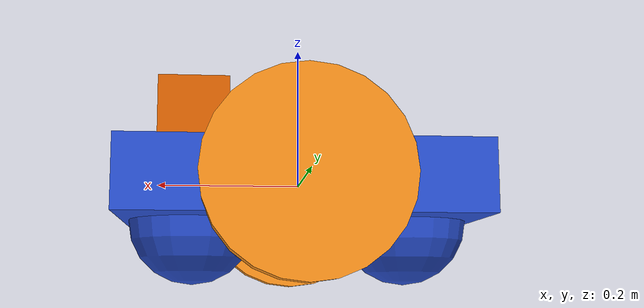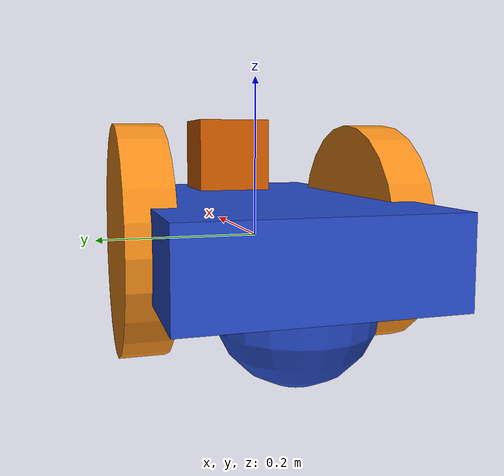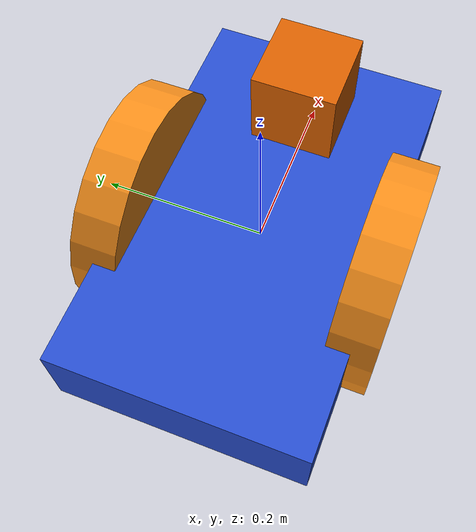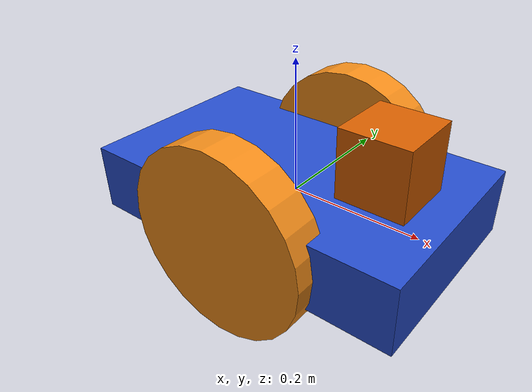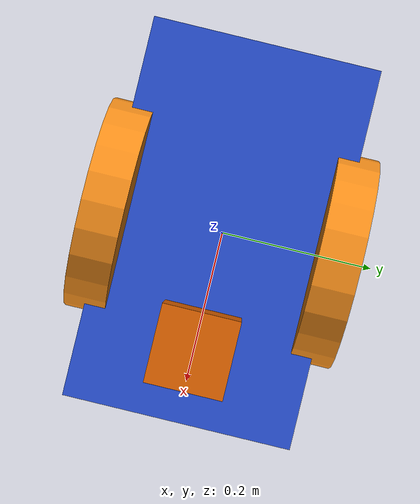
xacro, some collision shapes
<?xml version='1.0'?>

<robot name="my_robot" xmlns:xacro="http://www.ros.org/wiki/xacro">

  <xacro:include filename="$(find my_robot)/urdf/my_robot.gazebo" />

  <link name="robot_footprint"></link>

  <joint name="robot_footprint_joint" type="fixed">
    <origin xyz="0 0 0" rpy="0 0 0" />
    <parent link="robot_footprint"/>
    <child link="chassis" />
  </joint>

  <link name='chassis'>
    <pose>0 0 0.1 0 0 0</pose>

    <inertial>
      <mass value="15.0"/>
      <origin xyz="0.0 0 0" rpy=" 0 0 0"/>
      <inertia
          ixx="0.1" ixy="0" ixz="0"
          iyy="0.1" iyz="0"
          izz="0.1"
      />
    </inertial>

    <collision name='collision'>
      <origin xyz="0 0 0" rpy=" 0 0 0"/>
      <geometry>
        <box size=".5 .3 .1"/>
      </geometry>
    </collision>

    <visual name='chassis_visual'>
      <origin xyz="0 0 0" rpy=" 0 0 0"/>
      <geometry>
        <box size=".5 .3 .1"/>
      </geometry>
    </visual>

    <collision name='back_caster_collision'>
      <origin xyz="-0.15 0 -0.05" rpy=" 0 0 0"/>
      <geometry>
        <sphere radius="0.0899"/>
      </geometry>
    </collision>

    <visual name='back_caster_visual'>
      <origin xyz="-0.15 0 -0.05" rpy=" 0 0 0"/>
      <geometry>
        <sphere radius="0.09"/>
      </geometry>
    </visual>

    <collision name='front_caster_collision'>
      <origin xyz="0.15 0 -0.05" rpy=" 0 0 0"/>
      <geometry>
        <sphere radius="0.0899"/>
      </geometry>
    </collision>

    <visual name='front_caster_visual'>
      <origin xyz="0.15 0 -0.05" rpy=" 0 0 0"/>
      <geometry>
        <sphere radius="0.09"/>
      </geometry>
    </visual>

  </link>

<link name='left_wheel'>

  <visual>
    <origin xyz="0 0 0" rpy="0 1.5707 1.5707"/>
    <geometry>
      <cylinder radius="0.14" length="0.055"/>
    </geometry>
  </visual>

  <collision>
    <origin xyz="0 0 0" rpy="0 1.5707 1.5707"/>
    <geometry>
    <cylinder radius="0.14" length="0.055"/>
    </geometry>
  </collision>

  <inertial>
    <mass value="5.0"/>
    <origin xyz="0 0 0" rpy="0 1.5707 1.5707"/>
    <inertia ixx="0.1" ixy="0" ixz="0" iyy="0.1" iyz="0" izz="0.1"/>
  </inertial>

</link>

<link name='right_wheel'>

  <visual>
    <origin xyz="0 0 0" rpy="0 1.5707 1.5707"/>
    <geometry>
      <cylinder radius="0.14" length="0.055"/>
    </geometry>
  </visual>

  <collision>
    <origin xyz="0 0 0" rpy="0 1.5707 1.5707"/>
    <geometry>
    <cylinder radius="0.14" length="0.055"/>
    </geometry>
  </collision>

  <inertial>
    <mass value="5.0"/>
    <origin xyz="0 0 0" rpy="0 1.5707 1.5707"/>
    <inertia ixx="0.1" ixy="0" ixz="0" iyy="0.1" iyz="0" izz="0.1"/>
  </inertial>

</link>

  <joint type="continuous" name="left_wheel_hinge">
    <origin xyz="0 0.15 0" rpy="0 0 0"/>
    <child link="left_wheel"/>
    <parent link="chassis"/>
    <axis xyz="0 1 0" rpy="0 0 0"/>
    <limit effort="10000" velocity="1000"/>
    <dynamics damping="1.0" friction="1.0"/>
  </joint>

   <joint type="continuous" name="right_wheel_hinge">
    <origin xyz="0 -0.15 0" rpy="0 0 0"/>
    <child link="right_wheel"/>
    <parent link="chassis"/>
    <axis xyz="0 1 0" rpy="0 0 0"/>
    <limit effort="10000" velocity="1000"/>
    <dynamics damping="1.0" friction="1.0"/>
  </joint>

  <link name='camera'>
    <origin xyz="0 0 0" rpy = "0 0 0"/>
    <visual>
	<geometry>
          <box size=".05 .05 .05"/>
	</geometry>
    </visual>

    <intertial>
      <mass value ="0.1"/>
     <box_inertia m="0.1" x="0.05" y="0.05" z="0.05" />
     <intertia ixx="1e-6" ixy="0" ixz="0" iyy="1e-6" iyz="0" izz="1e-6"/>
   </intertial>

  </link>

 <joint type="fixed" name="camera_joint">
    <origin xyz="0.2 0 0" rpy="0 0 0"/>
    <child link="camera"/>
    <parent link="chassis"/>
    <axis xyz="0 1 0" rpy="0 0 0"/>
  </joint>

  <link name='hokuyo'>
    <collision>
      <origin xyz="0 0 0" rpy="0 0 0"/>
      <geometry>
        <box size=".1 .1 .1"/>
      </geometry>
    </collision>

    <visual>
      <origin xyz="0 0 0" rpy=" 0 0 0"/>
      <geometry>
        <mesh filename="package://my_robot/meshes/hokuyo.dae"/>
      </geometry>
    </visual>

    <intertial>
      <mass value ="1e-5"/>
      <intertia ixx="1e-6" ixy="0" ixz="0" iyy="1e-6" iyz="0" izz="1e-6"/>
    </intertial>

 </link>
  <joint name="camera_optical_joint" type="fixed">
    <origin xyz="0 0 0" rpy="-1.5707 0 -1.5707"/>
    <parent link="camera"/>
    <child link="camera_link_optical"/>
  </joint>

  <link name="camera_link_optical">
  </link>

 <joint type="fixed" name="hokuyo_joint">
    <origin xyz="0.15 0 0.1" rpy="0 0 0"/>
    <child link="hokuyo"/>
    <parent link="chassis"/>
    <axis xyz="0 1 0" rpy="0 0 0"/>
  </joint>

  <gazebo reference="chassis">
    <material>Gazebo/Blue</material>
  </gazebo>

  <gazebo reference="left_wheel">
    <material>Gazebo/Orange</material>
  </gazebo>

  <gazebo reference="right_wheel">
    <material>Gazebo/Orange</material>
  </gazebo>

 <gazebo reference="camera">
    <material>Gazebo/Purple</material>
  </gazebo>

</robot>
